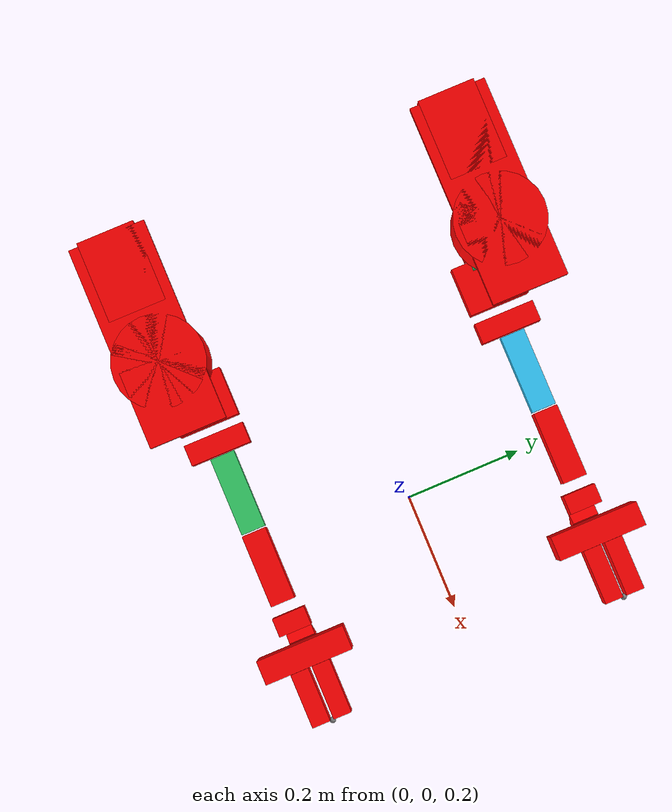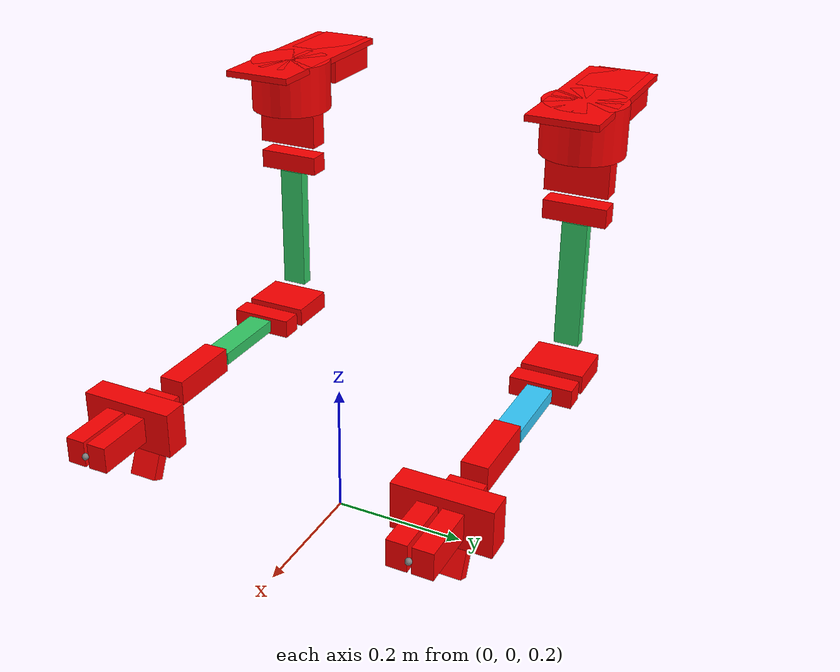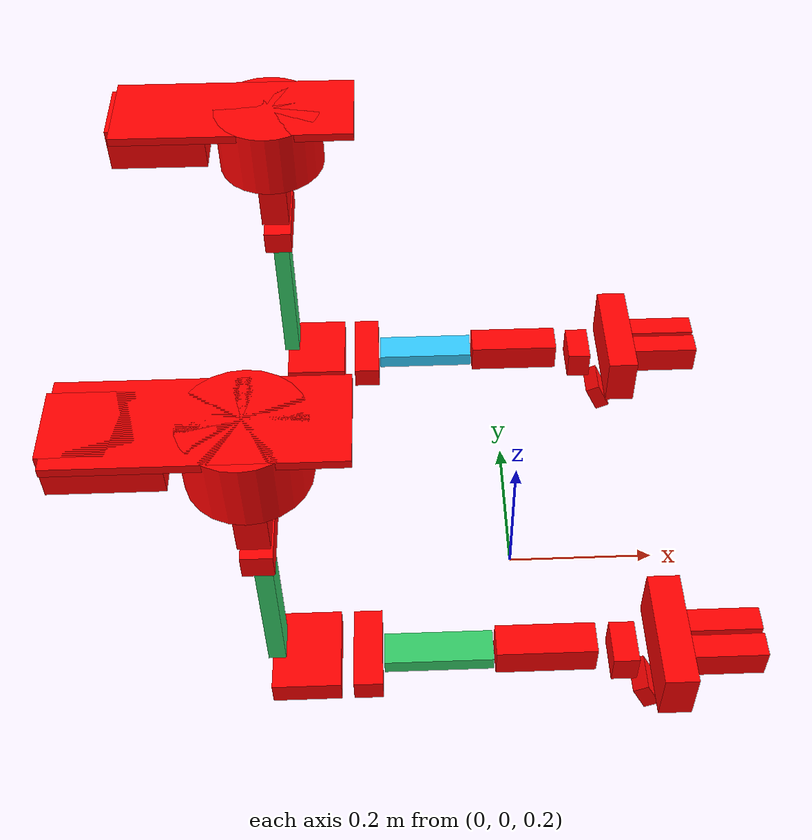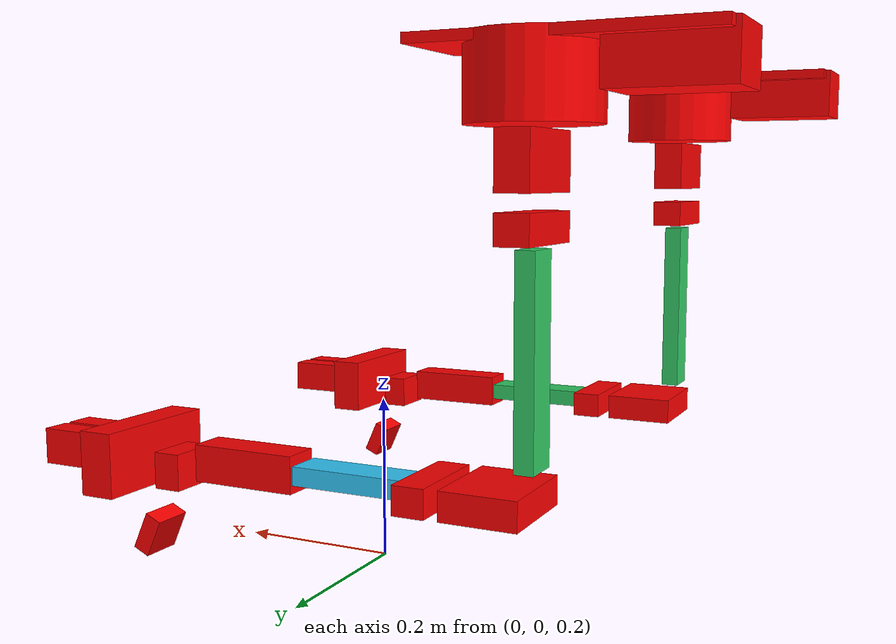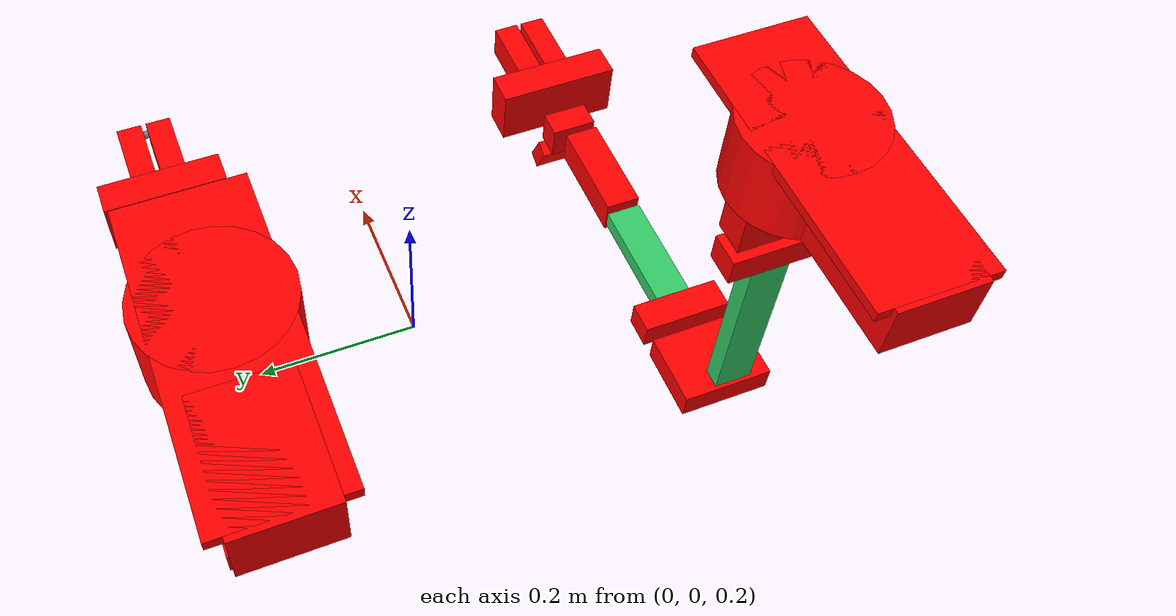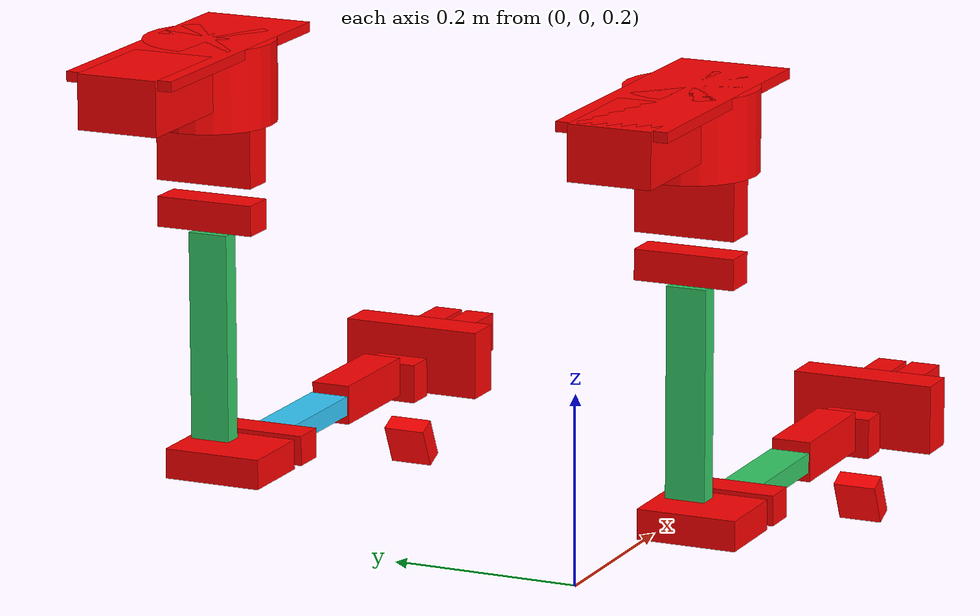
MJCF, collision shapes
<mujoco model="aloha_base_upside_down_bimanual_50cm_xz_length_variation">
  <compiler angle="radian" meshdir="assets" autolimits="true" />

  <asset>
    <material name="black" rgba="0.15 0.15 0.15 1" />

    <mesh file="vx300s_1_base.stl" scale="0.001 0.001 0.001" />
    <mesh file="vx300s_2_shoulder.stl" scale="0.001 0.001 0.001" />
    <mesh file="vx300s_3_upper_arm.stl" scale="0.001 0.001 0.001" />
    <mesh file="vx300s_4_upper_forearm.stl" scale="0.001 0.001 0.001" />
    <mesh file="vx300s_5_lower_forearm.stl" scale="0.001 0.001 0.001" />
    <mesh file="vx300s_6_wrist.stl" scale="0.001 0.001 0.001" />
    <mesh file="vx300s_7_gripper_prop.stl" />
    <mesh file="vx300s_7_gripper_bar.stl" />
    <mesh file="vx300s_7_gripper_wrist_mount.stl" />
    <mesh file="vx300s_8_custom_finger_left.stl" />
    <mesh file="vx300s_8_custom_finger_right.stl" />
    <mesh file="custom_vx300s_3_upper_arm_part1.stl" />
    <mesh file="custom_vx300s_3_upper_arm_part2.stl" />
    <mesh file="custom_vx300s_3_upper_forearm_part1.stl" />
    <mesh file="custom_vx300s_3_upper_forearm_part2.stl" />
    <mesh file="d405_solid.stl" />
  </asset>

  <default>
    <default class="vx300s">
      <joint axis="0 1 0" actuatorfrcrange="-35 35" actuatorgravcomp="true" />
      <motor ctrlrange="-35 35" />
      <site group="1" />
      <default class="waist">
        <joint axis="0 0 1" range="-3.14158 3.14158" damping="5.76" />
        <position ctrlrange="-3.14158 3.14158" kp="43" forcerange="-35 35" />
      </default>
      <default class="shoulder">
        <joint range="-1.85005 1.25664" armature="0.395" frictionloss="2.0" damping="20.0"
          actuatorfrcrange="-144 144" />
        <position ctrlrange="-1.85005 1.25664" kp="265" forcerange="-144 144" />
      </default>
      <default class="elbow">
        <joint range="-1.76278 1.6057" armature="0.383" frictionloss="1.15" damping="18.49"
          actuatorfrcrange="-59 59" />
        <position ctrlrange="-1.76278 1.6057" kp="227" forcerange="-59 59" />
      </default>
      <default class="forearm_roll">
        <joint axis="1 0 0" range="-3.14158 3.14158" armature="0.14" damping="6.78"
          actuatorfrcrange="-22 22" />
        <position ctrlrange="-3.14158 3.14158" kp="78" forcerange="-22 22" />
      </default>
      <default class="wrist_angle">
        <joint range="-1.8675 2.23402" armature="0.008" damping="6.28"
          actuatorfrcrange="-35 35" />
        <position ctrlrange="-1.8675 2.23402" kp="37" forcerange="-35 35" />
      </default>
      <default class="wrist_rotate">
        <joint axis="1 0 0" range="-3.14158 3.14158" damping="1.2"
          actuatorfrcrange="-35 35" />
        <position ctrlrange="-3.14158 3.14158" kp="10.4" forcerange="-35 35" />
      </default>
      <default class="finger">
        <joint type="slide" armature="0.243" damping="40"
          actuatorfrcrange="-35 35" />
        <position ctrlrange="0.002 0.037" kp="2000" kv="124" forcerange="-35 35" />
        <default class="left_finger">
          <joint range="0 0.041" axis="0 0 -1" />
        </default>
        <default class="right_finger">
          <joint range="0 0.041" axis="0 0 -1" />
        </default>
      </default>
      <default class="visual">
        <geom type="mesh" mass="0" group="2" material="black" contype="0" conaffinity="0" />
      </default>
      <default class="collision">
        <geom group="3" type="mesh" condim="6" friction="1 5e-3 5e-4" solref=".01 1" />
        <default class="sphere_collision">
          <geom type="sphere" size="0.0006" rgba="1 0 0 1" />
        </default>
      </default>
    </default>
  </default>

  <worldbody>
    <body name="left_base_link" childclass="vx300s" pos="-0.3 0.25 0.8" euler="3.141592653589793 0 0">
      <geom quat="1 0 0 1" class="visual" mesh="vx300s_1_base" />
      <geom type="cylinder" size="0.065 0.04" pos="0 0 0.04" class="collision"
        rgba="1 0 0 1" mass="0.5" />
      <geom type="box" size="0.145 0.055 0.005" pos="-0.04 0 0.005" class="collision"
        rgba="1 0 0 1" mass="0.069034" />
      <geom type="box" size="0.058 0.041 0.027" pos="-0.132 0 0.027" class="collision"
        rgba="1 0 0 1" mass="0.4" />
      <body name="left_shoulder_link" pos="0 0 0.079">
        <joint name="left_waist" class="waist" />
        <geom pos="0 0 -0.003" quat="1 0 0 1" class="visual" mesh="vx300s_2_shoulder" />
        <geom pos="0.0005 0 0.033" rgba="1 0 0 1" type="box" size="0.017 0.05 0.0285"
          class="collision" mass="0.798614" />
        <body name="left_upper_arm_link" pos="0 0 0.04805">
          <geom pos="0.0005 0 0.045" rgba="1 0 0 1" type="box" size="0.017 0.05 0.015"
            class="collision" mass="0.1" name="left_upper_arm_link_motor_housing" />
          <joint name="left_shoulder" class="shoulder" />
          <geom quat="1 0 0 1" class="visual" mesh="custom_vx300s_3_upper_arm_part1" />
          <geom quat="1 0 0 1" class="visual" mesh="custom_vx300s_3_upper_arm_part2"
            name="left_upper_arm_connector" pos="0 0 0" />
          <geom type="box" size="0.01 0.02 0.103" pos="0 0 0.167" density="100"
            rgba="0.2 0.8 0.4 1" name="left_upper_arm_extension" class="collision" />
          <geom pos="0.033 0 0.3" rgba="1 0 0 1" type="box"
            size="0.04 0.05 0.015"
            class="collision" mass="0" name="left_upper_forearm_link_motor_housing" />
          <body name="left_upper_forearm_link" pos="0.05955 0 0.3">
            <geom pos="0.045 0 0.0005" rgba="1 0 0 1" type="box"
              size="0.017 0.05 0.015"
              class="collision" mass="0" name="left_upper_forearm_link_connector" />
            <joint name="left_elbow" class="elbow" />
            <geom class="visual" mesh="custom_vx300s_3_upper_forearm_part1" mass="0.05" />
            <geom class="visual" mesh="custom_vx300s_3_upper_forearm_part2"
              name="left_upper_forearm_connector" mass="0.05" pos="0 0 0" />
            <geom type="box" size="0.064685 0.02 0.01" pos="0.128684 0 0" density="100"
              rgba="0.2 0.8 1.0 1" name="left_upper_forearm_extension" class="collision" />
            <body name="left_lower_forearm_link" pos="0.2 0 0">
              <joint name="left_forearm_roll" class="forearm_roll" />
              <geom quat="0 1 0 0" class="visual" mesh="vx300s_5_lower_forearm" />
              <geom type="box" size="0.06 0.02 0.02" pos="0.056 0 0.0" rgba="1 0 0 1"
                mass="0.414823" class="collision" />
              <body name="left_wrist_link" pos="0.1 0 0">
                <inertial pos="0.046743 -7.6652e-06 0.010565"
                  quat="-0.00100191 0.544586 0.0026583 0.8387"
                  mass="0.115395"
                  diaginertia="5.45707e-05 4.63101e-05 4.32692e-05" />
                <joint name="left_wrist_angle" class="wrist_angle" />
                <geom quat="1 0 0 1" class="visual" mesh="vx300s_6_wrist" mass="0" />
                <geom type="box" size="0.0155 0.027 0.02" pos="0.05 0 0.012"
                  rgba="1 0 0 1"
                  mass="0.115395"
                  class="collision" />
                <body name="left_gripper_link" euler="0 1.57 -1.57" pos="0.104744 0 0">
                  <joint name="left_wrist_rotate" class="wrist_rotate" axis="0 0 1" />
                  <geom type="box" size="0.073 0.035 0.02"
                    pos="0 0 0"
                    rgba="1 0 0 1"
                    class="collision" mass="0.22158" />
                  <geom type="box" size="0.022 0.022 0.01"
                    pos="0.0 -0.088 -0.02"
                    euler="-0.43 0 0"
                    rgba="1 0 0 1"
                    mass="0.2"
                    class="collision" />
                  <geom class="visual" mesh="vx300s_7_gripper_prop" />
                  <geom class="visual" mesh="vx300s_7_gripper_bar" />
                  <geom class="visual" pos="0 -0.03525 -0.0227"
                    quat="0 -1 0 -1" type="mesh"
                    mesh="vx300s_7_gripper_wrist_mount" />
                  <geom class="visual" pos="0 -0.0824748 -0.0095955"
                    quat="0 0 -0.21644 -0.976296"
                    type="mesh" mesh="d405_solid" />
                  <site name="left_end_effector_target" pos="0 0 0.113" group="1" />
                  <camera name="left_wrist_cam_left" pos="0 -0.0824748 -0.0095955"
                    mode="fixed"
                    euler="2.70525955359 0 0"
                    focal="1.93e-3 1.93e-3" resolution="1280 720"
                    sensorsize="3896e-6 2140e-6" />
                  <body name="left_left_finger_link"
                    pos="0.028 -0.0141637 0.0211727"
                    quat="1 -1 -1 1">
                    <inertial pos="0.0143478 -0.0284791 0.0122897"
                      quat="0.535486 0.458766 -0.450407 0.547651"
                      mass="0.0862937"
                      diaginertia="5.86848e-05 4.46887e-05 1.8397e-05" />
                    <geom pos="0.0141637 0.0211727 0.06" class="visual"
                      quat="1 1 1 -1"
                      type="mesh"
                      mesh="vx300s_8_custom_finger_left" />
                    <geom type="box" size="0.02 0.045 0.015"
                      pos="0.015 -0.045 0.01"
                      euler="0 0 0"
                      rgba="1 0 0 1"
                      mass="0.0862937" class="collision" />
                  </body>
                  <body name="left_right_finger_link"
                    pos="-0.028 -0.0141637 0.0211727"
                    quat="1 1 1 1">
                    <inertial pos="0.0143711 0.0284792 0.0121421"
                      quat="0.461317 0.537615 -0.545478 0.447894"
                      mass="0.0862932"
                      diaginertia="5.86828e-05 4.46887e-05 1.83949e-05" />
                    <geom pos="0.0141637 -0.0211727 0.0597067"
                      class="visual" quat="1 -1 -1 -1"
                      type="mesh"
                      mesh="vx300s_8_custom_finger_right" />
                    <geom type="box" size="0.02 0.045 0.015"
                      pos="0.015 0.045 0.01"
                      euler="0 0 0"
                      rgba="1 0 0 1"
                      mass="0.0862932" class="collision" />
                  </body>
                </body>
              </body>
            </body>
          </body>
        </body>
      </body>
    </body>

    <body name="right_base_link" childclass="vx300s" pos="-0.3 -0.25 0.8" euler="3.141592653589793 0 0">
      <geom quat="1 0 0 1" class="visual" mesh="vx300s_1_base" />
      <geom type="cylinder" size="0.065 0.04" pos="0 0 0.04" class="collision"
        rgba="1 0 0 1" mass="0.5" />
      <geom type="box" size="0.145 0.055 0.005" pos="-0.04 0 0.005" class="collision"
        rgba="1 0 0 1" mass="0.069034" />
      <geom type="box" size="0.058 0.041 0.027" pos="-0.132 0 0.027" class="collision"
        rgba="1 0 0 1" mass="0.4" />
      <body name="right_shoulder_link" pos="0 0 0.079">
        <joint name="right_waist" class="waist" />
        <geom pos="0 0 -0.003" quat="1 0 0 1" class="visual" mesh="vx300s_2_shoulder" />
        <geom pos="0.0005 0 0.033" rgba="1 0 0 1" type="box" size="0.017 0.05 0.0285"
          class="collision" mass="0.798614" />
        <body name="right_upper_arm_link" pos="0 0 0.04805">
          <geom pos="0.0005 0 0.045" rgba="1 0 0 1" type="box" size="0.017 0.05 0.015"
            class="collision" mass="0.1" name="right_upper_arm_link_motor_housing" />
          <joint name="right_shoulder" class="shoulder" />
          <geom quat="1 0 0 1" class="visual" mesh="custom_vx300s_3_upper_arm_part1" />
          <geom quat="1 0 0 1" class="visual" mesh="custom_vx300s_3_upper_arm_part2"
            name="right_upper_arm_connector" pos="0 0 0" />
          <geom type="box" size="0.01 0.02 0.103" pos="0 0 0.167" density="100"
            rgba="0.2 0.8 0.4 1" name="right_upper_arm_extension" class="collision" />
          <geom pos="0.033 0 0.3" rgba="1 0 0 1" type="box"
            size="0.04 0.05 0.015"
            class="collision" mass="0" name="right_upper_forearm_link_motor_housing" />
          <body name="right_upper_forearm_link" pos="0.05955 0 0.3">
            <geom pos="0.045 0 0.0005" rgba="1 0 0 1" type="box"
              size="0.017 0.05 0.015"
              class="collision" mass="0" name="right_upper_forearm_link_connector" />
            <joint name="right_elbow" class="elbow" />
            <geom class="visual" mesh="custom_vx300s_3_upper_forearm_part1" mass="0.05" />
            <geom class="visual" mesh="custom_vx300s_3_upper_forearm_part2"
              name="right_upper_forearm_connector" mass="0.05" pos="0 0 0" />
            <geom type="box" size="0.064685 0.02 0.01" pos="0.128684 0 0" density="100"
              rgba="0.2 0.8 0.4 1" name="right_upper_forearm_extension" class="collision" />
            <body name="right_lower_forearm_link" pos="0.2 0 0">
              <joint name="right_forearm_roll" class="forearm_roll" />
              <geom quat="0 1 0 0" class="visual" mesh="vx300s_5_lower_forearm" />
              <geom type="box" size="0.06 0.02 0.02" pos="0.056 0 0.0" rgba="1 0 0 1"
                mass="0.414823" class="collision" />
              <body name="right_wrist_link" pos="0.1 0 0">
                <inertial pos="0.046743 -7.6652e-06 0.010565"
                  quat="-0.00100191 0.544586 0.0026583 0.8387"
                  mass="0.115395"
                  diaginertia="5.45707e-05 4.63101e-05 4.32692e-05" />
                <joint name="right_wrist_angle" class="wrist_angle" />
                <geom quat="1 0 0 1" class="visual" mesh="vx300s_6_wrist" mass="0" />
                <geom type="box" size="0.0155 0.027 0.02" pos="0.05 0 0.012"
                  rgba="1 0 0 1"
                  mass="0.115395"
                  class="collision" />
                <body name="right_gripper_link" euler="0 1.57 -1.57" pos="0.104744 0 0">
                  <joint name="right_wrist_rotate" class="wrist_rotate" axis="0 0 1" />
                  <geom type="box" size="0.073 0.035 0.02"
                    pos="0 0 0"
                    rgba="1 0 0 1"
                    class="collision" mass="0.22158" />
                  <geom type="box" size="0.022 0.022 0.01"
                    pos="0.0 -0.088 -0.02"
                    euler="-0.43 0 0"
                    rgba="1 0 0 1"
                    mass="0.2"
                    class="collision" />
                  <geom class="visual" mesh="vx300s_7_gripper_prop" />
                  <geom class="visual" mesh="vx300s_7_gripper_bar" />
                  <geom class="visual" pos="0 -0.03525 -0.0227"
                    quat="0 -1 0 -1" type="mesh"
                    mesh="vx300s_7_gripper_wrist_mount" />
                  <geom class="visual" pos="0 -0.0824748 -0.0095955"
                    quat="0 0 -0.21644 -0.976296"
                    type="mesh" mesh="d405_solid" />
                  <site name="right_end_effector_target" pos="0 0 0.113" group="1" />
                  <camera name="right_wrist_cam_left" pos="0 -0.0824748 -0.0095955"
                    mode="fixed"
                    euler="2.70525955359 0 0"
                    focal="1.93e-3 1.93e-3" resolution="1280 720"
                    sensorsize="3896e-6 2140e-6" />
                  <body name="right_left_finger_link"
                    pos="0.028 -0.0141637 0.0211727"
                    quat="1 -1 -1 1">
                    <inertial pos="0.0143478 -0.0284791 0.0122897"
                      quat="0.535486 0.458766 -0.450407 0.547651"
                      mass="0.0862937"
                      diaginertia="5.86848e-05 4.46887e-05 1.8397e-05" />
                    <geom pos="0.0141637 0.0211727 0.06" class="visual"
                      quat="1 1 1 -1"
                      type="mesh"
                      mesh="vx300s_8_custom_finger_left" />
                    <geom type="box" size="0.02 0.045 0.015"
                      pos="0.015 -0.045 0.01"
                      euler="0 0 0"
                      rgba="1 0 0 1"
                      mass="0.0862937" class="collision" />
                  </body>
                  <body name="right_right_finger_link"
                    pos="-0.028 -0.0141637 0.0211727"
                    quat="1 1 1 1">
                    <inertial pos="0.0143711 0.0284792 0.0121421"
                      quat="0.461317 0.537615 -0.545478 0.447894"
                      mass="0.0862932"
                      diaginertia="5.86828e-05 4.46887e-05 1.83949e-05" />
                    <geom pos="0.0141637 -0.0211727 0.0597067"
                      class="visual" quat="1 -1 -1 -1"
                      type="mesh"
                      mesh="vx300s_8_custom_finger_right" />
                    <geom type="box" size="0.02 0.045 0.015"
                      pos="0.015 0.045 0.01"
                      euler="0 0 0"
                      rgba="1 0 0 1"
                      mass="0.0862932" class="collision" />
                  </body>
                </body>
              </body>
            </body>
          </body>
        </body>
      </body>
    </body>
  </worldbody>

  <actuator>
    <position class="waist" name="left_waist" joint="left_waist" />
    <position class="shoulder" name="left_shoulder" joint="left_shoulder" />
    <position class="elbow" name="left_elbow" joint="left_elbow" />
    <position class="forearm_roll" name="left_forearm_roll" joint="left_forearm_roll" />
    <position class="wrist_angle" name="left_wrist_angle" joint="left_wrist_angle" />
    <position class="wrist_rotate" name="left_wrist_rotate" joint="left_wrist_rotate" />
    <position class="waist" name="right_waist" joint="right_waist" />
    <position class="shoulder" name="right_shoulder" joint="right_shoulder" />
    <position class="elbow" name="right_elbow" joint="right_elbow" />
    <position class="forearm_roll" name="right_forearm_roll" joint="right_forearm_roll" />
    <position class="wrist_angle" name="right_wrist_angle" joint="right_wrist_angle" />
    <position class="wrist_rotate" name="right_wrist_rotate" joint="right_wrist_rotate" />
  </actuator>

  <keyframe>
    <key name="home"
      qpos="0 -0.96 1.16 0 -0.3 0   0 -0.96 1.16 0 -0.3 0"
      ctrl="0 -0.96 1.16 0 -0.3 0   0 -0.96 1.16 0 -0.3 0" />
  </keyframe>

    <custom>
        <!-- symmetric arm mount x in [-0.40, 0.00]: both arms shifted to same x -->
        <numeric name="left_base_link\body\pos\0\range\y" size='2' data='-0.40 0.00' />
        <text name="symmetric_arm_x"
            data="left_base_link\body\pos\0\range\y;right_base_link\body\pos\0\range\y" />

        <!-- symmetric arm mount z in [0.60, 0.90]: both arms hang at same height -->
        <numeric name="left_base_link\body\pos\2\range\y" size='2' data='0.60 0.90' />
        <text name="symmetric_arm_z"
            data="left_base_link\body\pos\2\range\y;right_base_link\body\pos\2\range\y" />

        <!-- symmetric upper arm extension length: total in [10cm, 50cm] (half-size 0.103+y, y in [-0.053, 0.147]) -->
        <numeric name="left_upper_arm_extension\geom\size\2\range\x+y" size='2' data='-0.053 0.147' />
        <text name="symmetric_upper_arm_extension"
            data="left_upper_arm_extension\geom\size\2\range\x+y;right_upper_arm_extension\geom\size\2\range\x+y;left_upper_arm_extension\geom\pos\2\range\x+y;right_upper_arm_extension\geom\pos\2\range\x+y;left_upper_arm_connector\geom\pos\2\range\(y-x)*2;right_upper_arm_connector\geom\pos\2\range\(y-x)*2;left_upper_forearm_link_motor_housing\geom\pos\2\range\0.3+y*2;right_upper_forearm_link_motor_housing\geom\pos\2\range\0.3+y*2;left_upper_forearm_link\body\pos\2\range\0.3+y*2;right_upper_forearm_link\body\pos\2\range\0.3+y*2" />

        <!-- symmetric upper forearm extension length: total in [5cm, 25cm] (half-size 0.064685+y, y in [-0.039685, 0.060315]) -->
        <numeric name="left_upper_forearm_extension\geom\size\0\range\x+y" size='2' data='-0.039685 0.060315' />
        <text name="symmetric_upper_forearm_extension"
            data="left_upper_forearm_extension\geom\size\0\range\x+y;right_upper_forearm_extension\geom\size\0\range\x+y;left_upper_forearm_extension\geom\pos\0\range\x+y;right_upper_forearm_extension\geom\pos\0\range\x+y;left_upper_forearm_connector\geom\pos\0\range\x+y*2;right_upper_forearm_connector\geom\pos\0\range\x+y*2;left_lower_forearm_link\body\pos\0\range\x+y*2;right_lower_forearm_link\body\pos\0\range\x+y*2" />
    </custom>

</mujoco>
